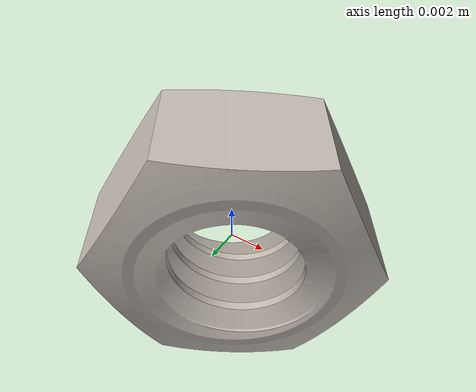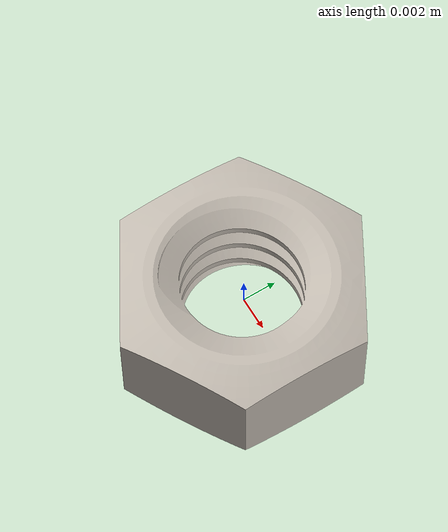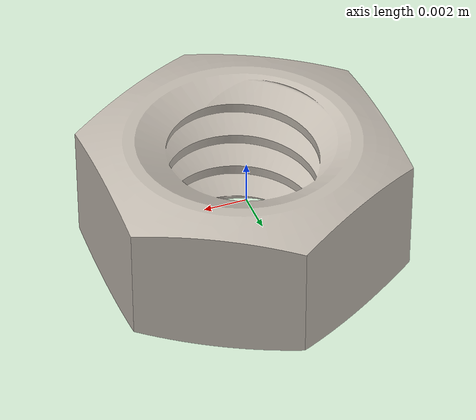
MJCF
<?xml version="1.0" encoding="UTF-8"?>
<mujoco model="nut">
  <asset>
    <texture type="2d" file="textures/metal.png" name="metal_tex"/>
    <material name="metal_mat" texture="metal_tex" specular="0.9" shininess="0.7" reflectance="0.25"/>
    <mesh name="nut_mesh" file="meshes/nut.stl"/>
  </asset>
  <worldbody>
    <body name="nut" pos="0 0 0">
      <freejoint name="nut_joint"/>
      <geom name="nut_visual" type="mesh" mesh="nut_mesh"
            material="metal_mat" group="1" contype="0" conaffinity="0"/>
      <geom name="nut_col" type="cylinder" group="3"
            size="0.00774843 0.00337532"
            pos="-0 -0 -1.4551e-05" quat="1 0 0 0"
            mass="0.001" friction="1.0 0.05 0.001" condim="4"/>
    </body>
  </worldbody>
</mujoco>
